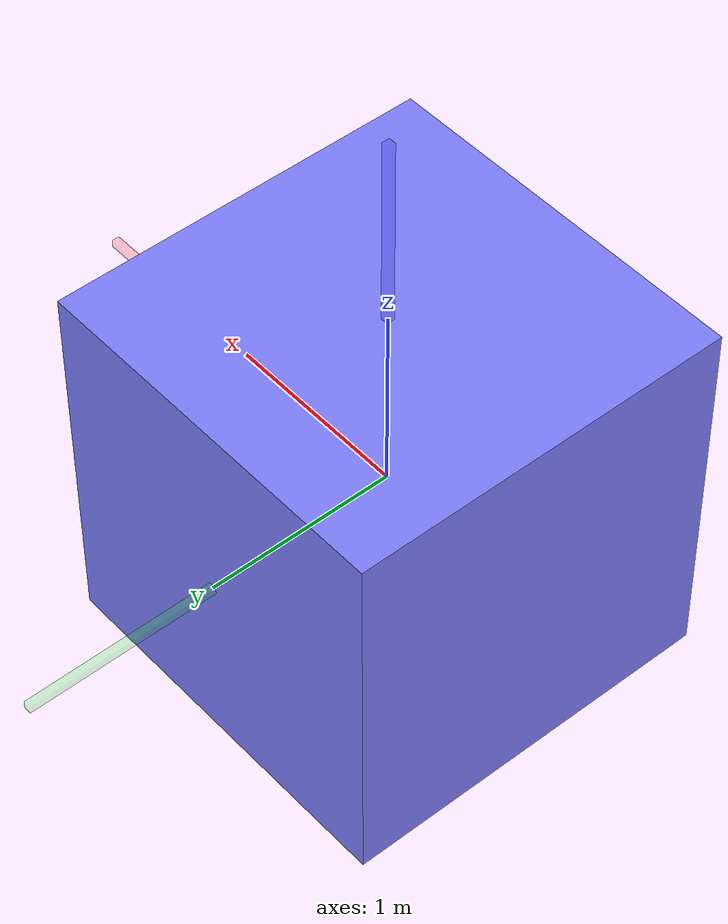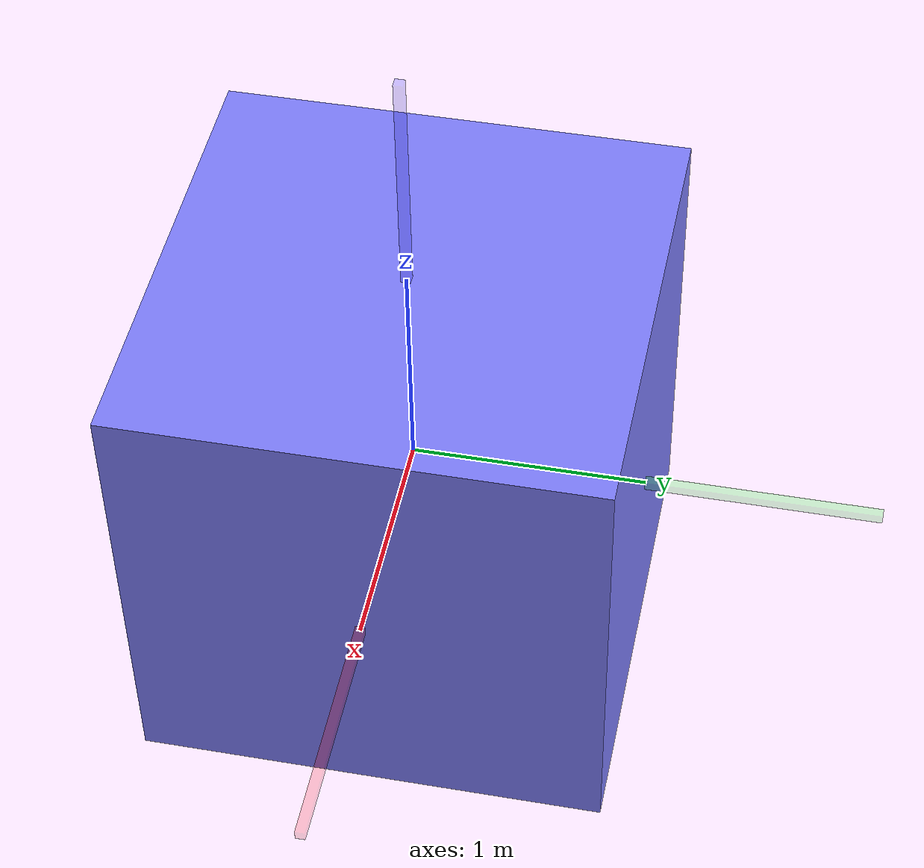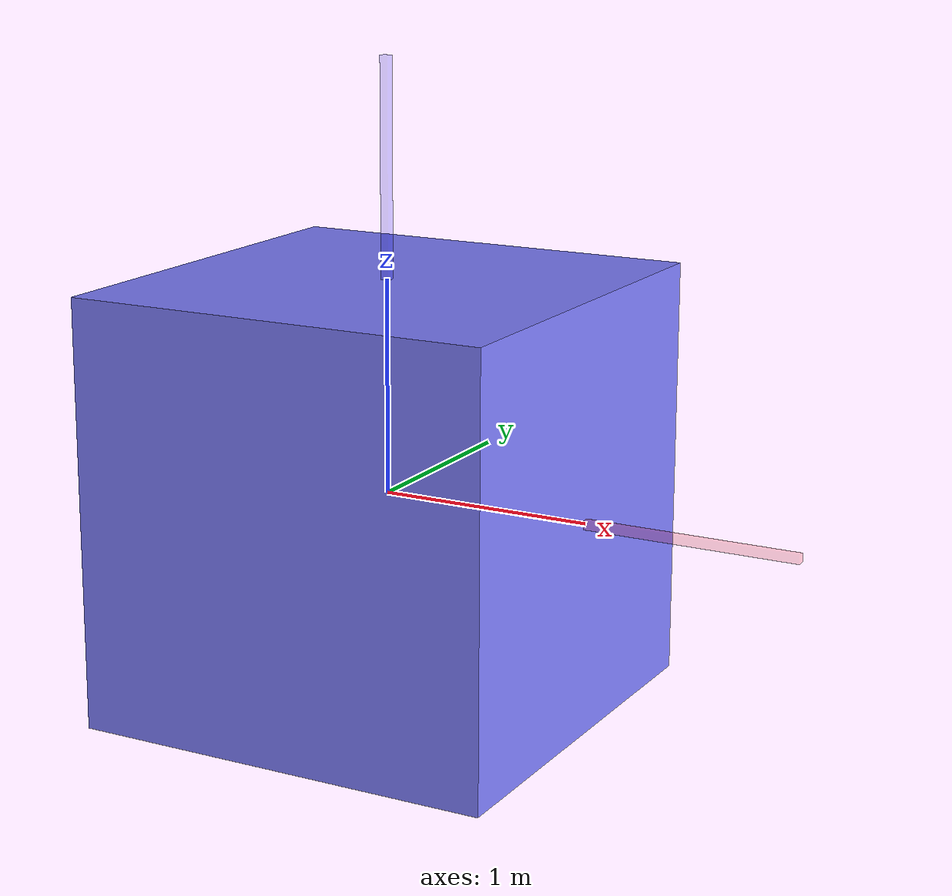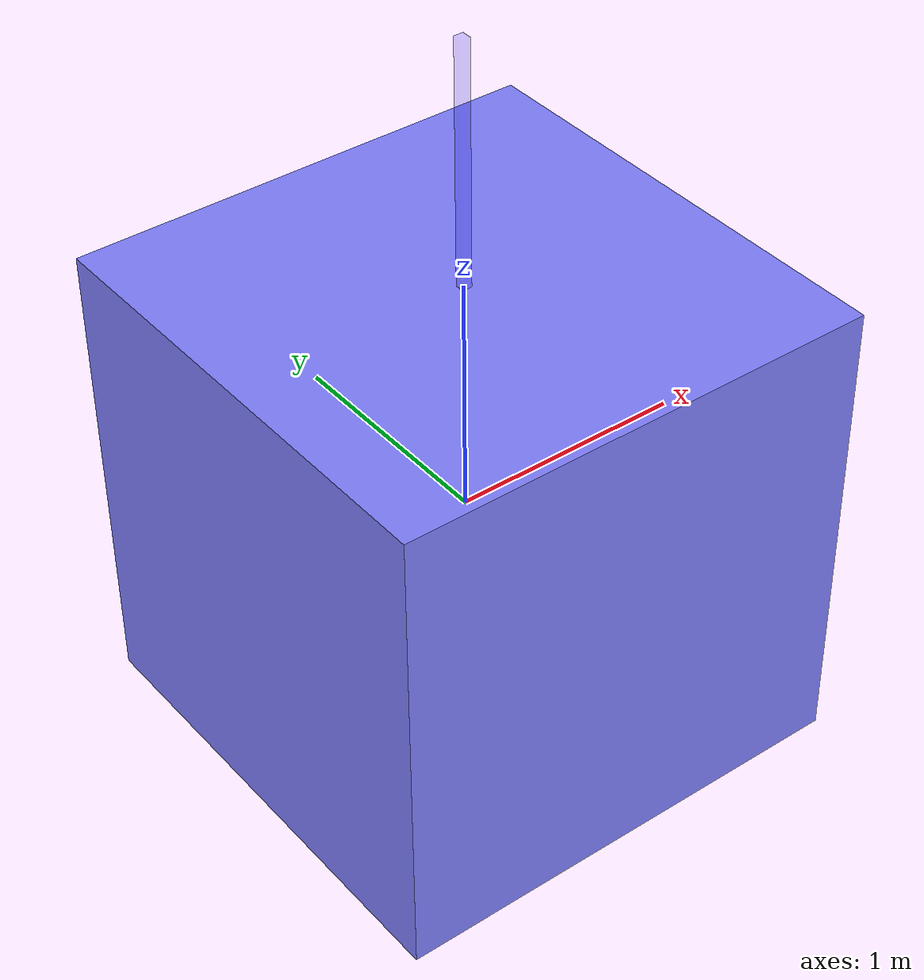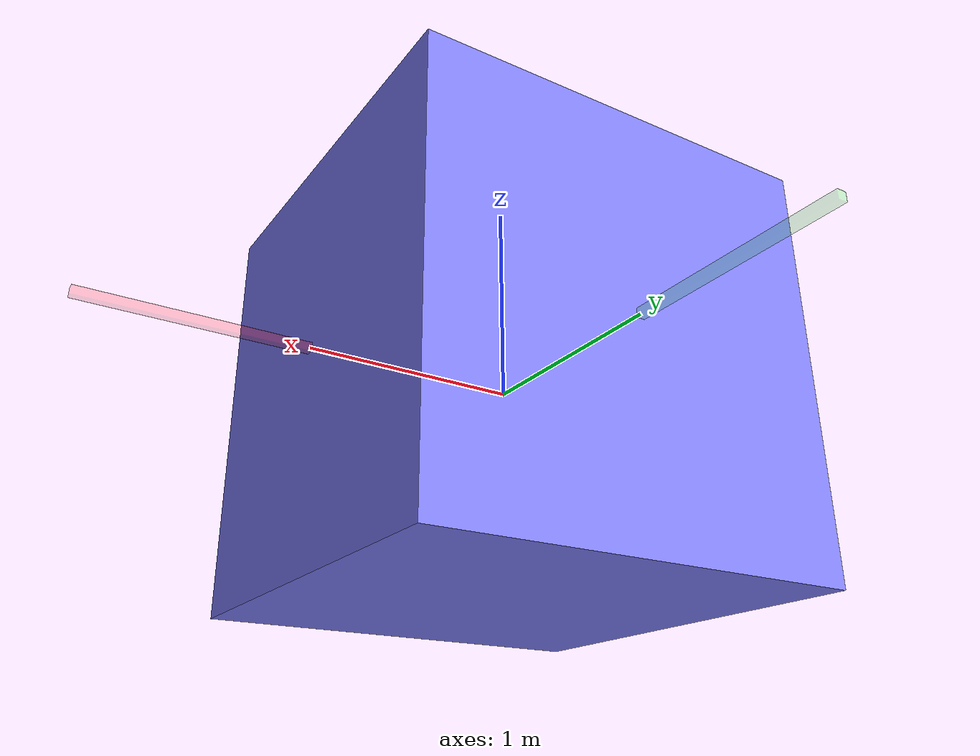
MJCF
<mujoco>
    <compiler angle="degree" coordinate="local" inertiafromgeom="true" />
    <option integrator="RK4" timestep="0.0001" />

    <worldbody>
         <light pos="0 -0.5 3"/>
            <body name="boxx" pos="0 0 0">
                <geom type="box" size="1 1 1" rgba=".5 .5 1 1" mass="1"/>
                <joint name='slider' type='slide' pos='0 0 0' axis='1 0 0' stiffness="1" damping="0.5" springref="0"/> jointの初期位置を決められる,refというタグもあった！
            </body>
    <site type="box" rgba="1 0 0 0.2" fromto="0 0 0 2 0 0" size="0.02"/>
    <site type="box" rgba="0 1 0 0.2" fromto="0 0 0 0 2 0" size="0.02"/>
    <site type="box" rgba="0 0 1 0.2" fromto="0 0 0 0 0 2" size="0.02"/>
    </worldbody>
    <actuator>
    </actuator>
</mujoco>
